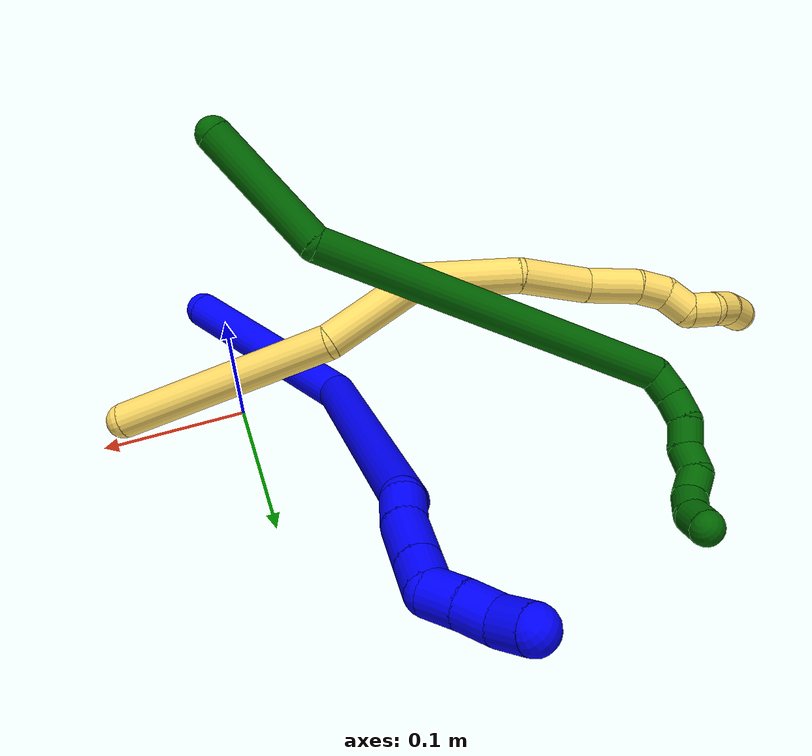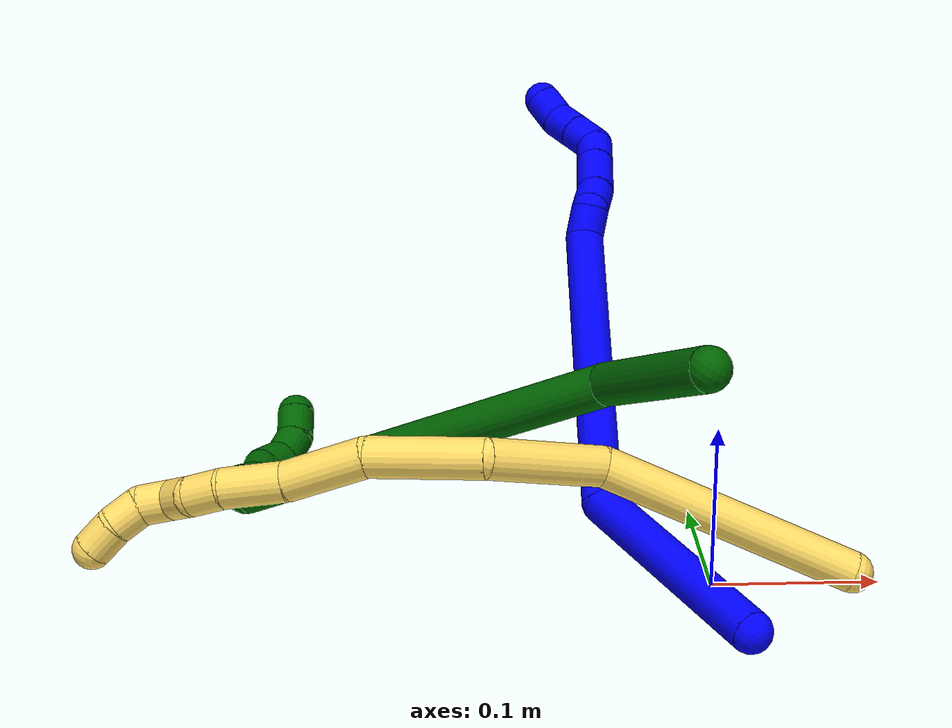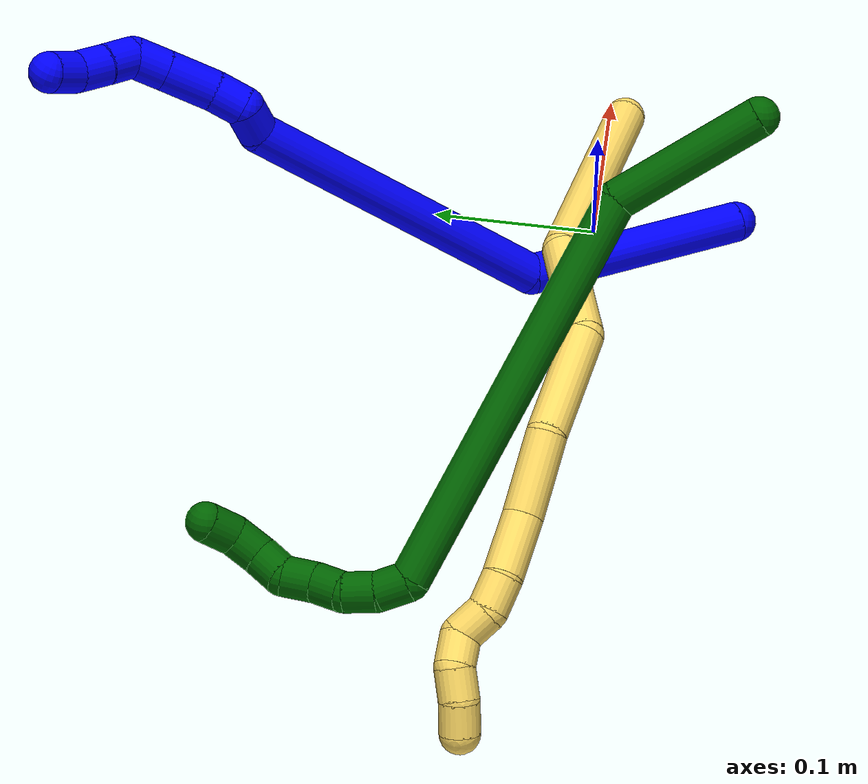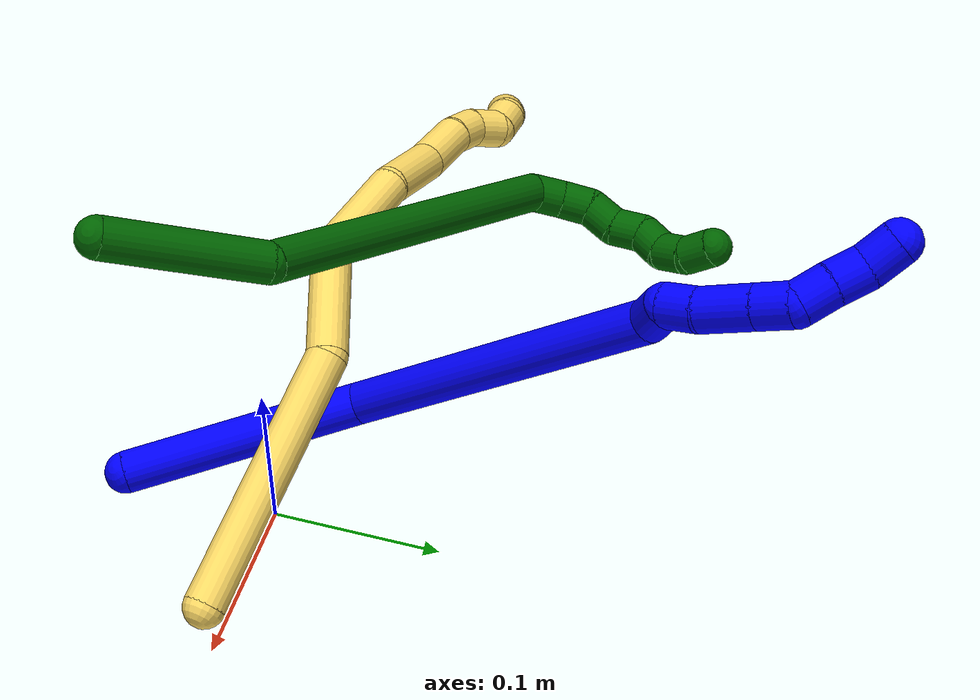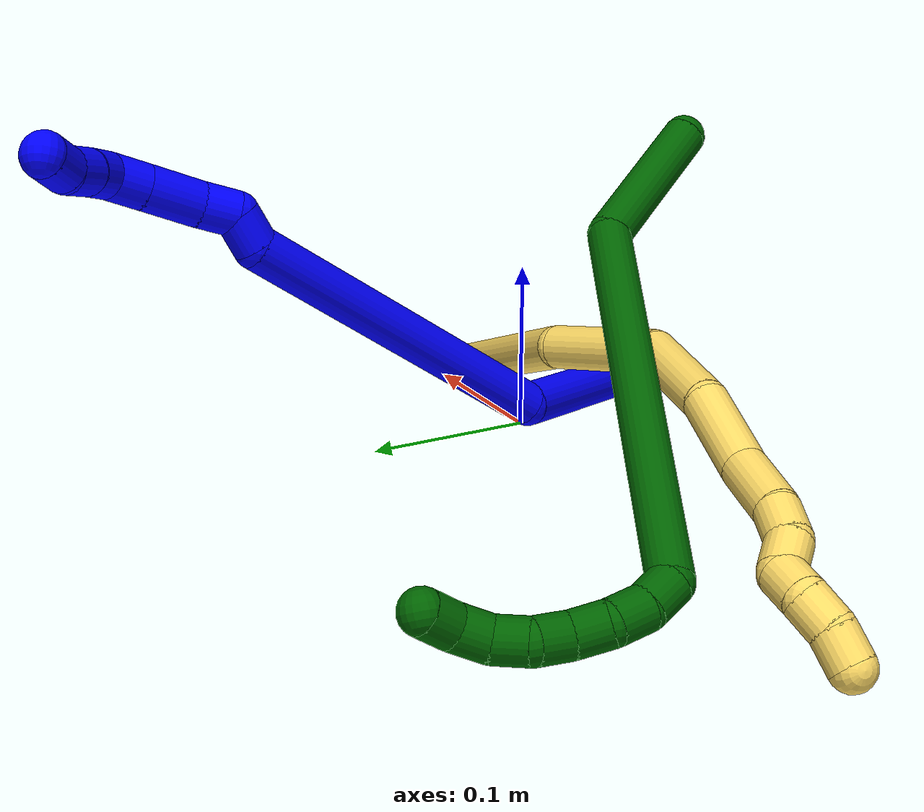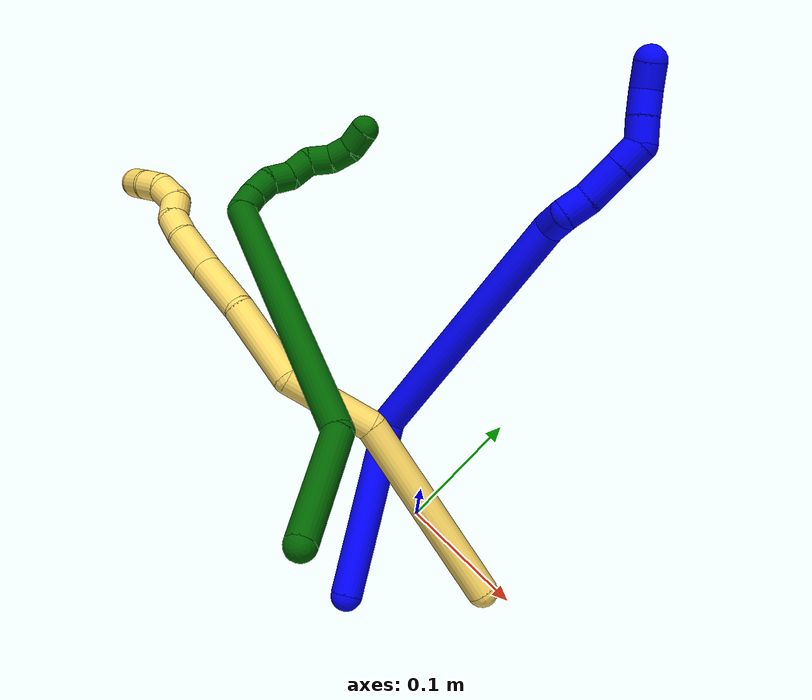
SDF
<sdf version="1.7">
 <world name="default">
  <model name="photoneo_s_sensor">
   <static>1</static>
   <pose>0 0 2 1.57079 1.57079 3.14159</pose>
   <link name="link">
    <inertial><mass>0.1</mass></inertial>
    <sensor name="sensor" type="depth">
     <update_rate>30</update_rate>
     <camera>
      <horizontal_fov>1.22</horizontal_fov>
      <image><width>1920</width><height>1200</height><format>B8G8R8</format></image>
      <clip><near>0.1</near><far>4</far></clip>
      <depth_camera><output>points</output></depth_camera>
     </camera>
     <plugin name="camera_plugin" filename="libgazebo_ros_depth_camera.so">
      <baseline>0.2</baseline>
      <alwaysOn>1</alwaysOn>
      <updateRate>0.0</updateRate>
      <cameraName>camera_ir</cameraName>
      <imageTopicName>/camera/color/image_raw</imageTopicName>
      <cameraInfoTopicName>/camera/color/camera_info</cameraInfoTopicName>
      <depthImageTopicName>/camera/depth/image_raw</depthImageTopicName>
      <depthImageCameraInfoTopicName>/camera/depth/camera_info</depthImageCameraInfoTopicName>
      <pointCloudTopicName>/camera/depth/points</pointCloudTopicName>
      <frameName>fr_optical</frameName>
      <pointCloudCutoff>0.1</pointCloudCutoff>
      <pointCloudCutoffMax>2.0</pointCloudCutoffMax>
      <distortionK1>0</distortionK1>
      <distortionK2>0</distortionK2>
      <distortionK3>0</distortionK3>
      <distortionT1>0</distortionT1>
      <distortionT2>0</distortionT2>
      <CxPrime>0</CxPrime>
      <Cx>0</Cx>
      <Cy>0</Cy>
      <focalLength>0</focalLength>
      <hackBaseline>0</hackBaseline>
     </plugin>
    </sensor>
   </link>
  </model>
  <model name="bin">
   <static>1</static>
   <link name="bottom">
    <collision name="collision-bottom">
     <pose>0 0 -0.01 0 -0 0</pose>
     <geometry><box><size>0.8 0.6 0.02</size></box></geometry>
     <surface>
      <friction><ode><mu>100</mu><mu2>100</mu2></ode></friction>
      <contact><collide_bitmask>65535</collide_bitmask></contact>
     </surface>
    </collision>
   </link>
   <link name="west_wall">
    <collision name="collision-west_wall">
     <pose>-0.41 0 0.1 0 -0 0</pose>
     <geometry><box><size>0.02 0.6 0.2</size></box></geometry>
     <surface>
      <friction><ode><mu>100</mu><mu2>100</mu2></ode></friction>
      <contact><collide_bitmask>65535</collide_bitmask></contact>
     </surface>
    </collision>
   </link>
   <link name="east_wall">
    <collision name="collision-east_wall">
     <pose>0.41 0 0.1 0 -0 0</pose>
     <geometry><box><size>0.02 0.6 0.2</size></box></geometry>
     <surface>
      <friction><ode><mu>100</mu><mu2>100</mu2></ode></friction>
      <contact><collide_bitmask>65535</collide_bitmask></contact>
     </surface>
    </collision>
   </link>
   <link name="south_wall">
    <collision name="collision-south_wall">
     <pose>0 -0.31 0.1 0 -0 0</pose>
     <geometry><box><size>0.8 0.02 0.2</size></box></geometry>
     <surface>
      <friction><ode><mu>100</mu><mu2>100</mu2></ode></friction>
      <contact><collide_bitmask>65535</collide_bitmask></contact>
     </surface>
    </collision>
   </link>
   <link name="north_wall">
    <collision name="collision-north_wall">
     <pose>0 0.31 0.1 0 -0 0</pose>
     <geometry><box><size>0.8 0.02 0.2</size></box></geometry>
     <surface>
      <friction><ode><mu>100</mu><mu2>100</mu2></ode></friction>
      <contact><collide_bitmask>65535</collide_bitmask></contact>
     </surface>
    </collision>
   </link>
  </model>
  <model name="1">
   <static>0</static>
   <link name="1">
    <collision name="collision-cylinder-e_1_1_4">
     <pose>-0.01716 0.062226 -0.028675 -2.00262 -0.245408 0.380577</pose>
     <geometry><cylinder><radius>0.0125</radius><length>0.141263</length></cylinder></geometry>
     <surface>
      <friction><ode><mu>1.16</mu><mu2>1.16</mu2><slip1>0</slip1><slip2>0</slip2></ode></friction>
      <contact><ode><kp>1e+06</kp><kd>1</kd><max_vel>0</max_vel><min_depth>0.001</min_depth></ode></contact>
     </surface>
    </collision>
    <visual name="visual-cylinder-e_1_1_4">
     <pose>-0.01716 0.062226 -0.028675 -2.00262 -0.245408 0.380577</pose>
     <geometry><cylinder><radius>0.0125</radius><length>0.141263</length></cylinder></geometry>
     <material><ambient>0 0 1 1</ambient></material>
    </visual>
    <collision name="collision-cylinder-e_2_4_5">
     <pose>-0.033466 0.224662 -0.037266 -1.37299 0.00836 -0.006851</pose>
     <geometry><cylinder><radius>0.0125</radius><length>0.204415</length></cylinder></geometry>
     <surface>
      <friction><ode><mu>1.16</mu><mu2>1.16</mu2><slip1>0</slip1><slip2>0</slip2></ode></friction>
      <contact><ode><kp>1e+06</kp><kd>1</kd><max_vel>0</max_vel><min_depth>0.001</min_depth></ode></contact>
     </surface>
    </collision>
    <visual name="visual-cylinder-e_2_4_5">
     <pose>-0.033466 0.224662 -0.037266 -1.37299 0.00836 -0.006851</pose>
     <geometry><cylinder><radius>0.0125</radius><length>0.204415</length></cylinder></geometry>
     <material><ambient>0 0 1 1</ambient></material>
    </visual>
    <collision name="collision-cylinder-e_3_5_6">
     <pose>-0.033158 0.332414 -0.01026 -0.828251 -0.053417 0.023484</pose>
     <geometry><cylinder><radius>0.0125</radius><length>0.020499</length></cylinder></geometry>
     <surface>
      <friction><ode><mu>1.16</mu><mu2>1.16</mu2><slip1>0</slip1><slip2>0</slip2></ode></friction>
      <contact><ode><kp>1e+06</kp><kd>1</kd><max_vel>0</max_vel><min_depth>0.001</min_depth></ode></contact>
     </surface>
    </collision>
    <visual name="visual-cylinder-e_3_5_6">
     <pose>-0.033158 0.332414 -0.01026 -0.828251 -0.053417 0.023484</pose>
     <geometry><cylinder><radius>0.0125</radius><length>0.020499</length></cylinder></geometry>
     <material><ambient>0 0 1 1</ambient></material>
    </visual>
    <collision name="collision-cylinder-e_4_6_7">
     <pose>-0.030192 0.349447 -0.002599 -1.49297 0.353534 -0.327528</pose>
     <geometry><cylinder><radius>0.0125</radius><length>0.020297</length></cylinder></geometry>
     <surface>
      <friction><ode><mu>1.16</mu><mu2>1.16</mu2><slip1>0</slip1><slip2>0</slip2></ode></friction>
      <contact><ode><kp>1e+06</kp><kd>1</kd><max_vel>0</max_vel><min_depth>0.001</min_depth></ode></contact>
     </surface>
    </collision>
    <visual name="visual-cylinder-e_4_6_7">
     <pose>-0.030192 0.349447 -0.002599 -1.49297 0.353534 -0.327528</pose>
     <geometry><cylinder><radius>0.0125</radius><length>0.020297</length></cylinder></geometry>
     <material><ambient>0 0 1 1</ambient></material>
    </visual>
    <collision name="collision-cylinder-e_5_7_8">
     <pose>-0.024049 0.37468 -0.001118 -1.52379 0.165334 -0.157771</pose>
     <geometry><cylinder><radius>0.0125</radius><length>0.031954</length></cylinder></geometry>
     <surface>
      <friction><ode><mu>1.16</mu><mu2>1.16</mu2><slip1>0</slip1><slip2>0</slip2></ode></friction>
      <contact><ode><kp>1e+06</kp><kd>1</kd><max_vel>0</max_vel><min_depth>0.001</min_depth></ode></contact>
     </surface>
    </collision>
    <visual name="visual-cylinder-e_5_7_8">
     <pose>-0.024049 0.37468 -0.001118 -1.52379 0.165334 -0.157771</pose>
     <geometry><cylinder><radius>0.0125</radius><length>0.031954</length></cylinder></geometry>
     <material><ambient>0 0 1 1</ambient></material>
    </visual>
    <collision name="collision-cylinder-e_6_8_9">
     <pose>-0.019703 0.400833 4e-05 -1.53071 0.163318 -0.156926</pose>
     <geometry><cylinder><radius>0.0125</radius><length>0.021118</length></cylinder></geometry>
     <surface>
      <friction><ode><mu>1.16</mu><mu2>1.16</mu2><slip1>0</slip1><slip2>0</slip2></ode></friction>
      <contact><ode><kp>1e+06</kp><kd>1</kd><max_vel>0</max_vel><min_depth>0.001</min_depth></ode></contact>
     </surface>
    </collision>
    <visual name="visual-cylinder-e_6_8_9">
     <pose>-0.019703 0.400833 4e-05 -1.53071 0.163318 -0.156926</pose>
     <geometry><cylinder><radius>0.0125</radius><length>0.021118</length></cylinder></geometry>
     <material><ambient>0 0 1 1</ambient></material>
    </visual>
    <collision name="collision-cylinder-e_7_9_10">
     <pose>-0.022511 0.419714 -0.002431 -1.89943 -0.468125 0.6433</pose>
     <geometry><cylinder><radius>0.0125</radius><length>0.020059</length></cylinder></geometry>
     <surface>
      <friction><ode><mu>1.16</mu><mu2>1.16</mu2><slip1>0</slip1><slip2>0</slip2></ode></friction>
      <contact><ode><kp>1e+06</kp><kd>1</kd><max_vel>0</max_vel><min_depth>0.001</min_depth></ode></contact>
     </surface>
    </collision>
    <visual name="visual-cylinder-e_7_9_10">
     <pose>-0.022511 0.419714 -0.002431 -1.89943 -0.468125 0.6433</pose>
     <geometry><cylinder><radius>0.0125</radius><length>0.020059</length></cylinder></geometry>
     <material><ambient>0 0 1 1</ambient></material>
    </visual>
    <collision name="collision-cylinder-e_8_10_11">
     <pose>-0.030943 0.436825 -0.008501 -1.92358 -0.401262 0.567446</pose>
     <geometry><cylinder><radius>0.0125</radius><length>0.020002</length></cylinder></geometry>
     <surface>
      <friction><ode><mu>1.16</mu><mu2>1.16</mu2><slip1>0</slip1><slip2>0</slip2></ode></friction>
      <contact><ode><kp>1e+06</kp><kd>1</kd><max_vel>0</max_vel><min_depth>0.001</min_depth></ode></contact>
     </surface>
    </collision>
    <visual name="visual-cylinder-e_8_10_11">
     <pose>-0.030943 0.436825 -0.008501 -1.92358 -0.401262 0.567446</pose>
     <geometry><cylinder><radius>0.0125</radius><length>0.020002</length></cylinder></geometry>
     <material><ambient>0 0 1 1</ambient></material>
    </visual>
    <collision name="collision-cylinder-e_9_11_2">
     <pose>-0.039642 0.454463 -0.011839 -1.58817 -0.489348 0.49758</pose>
     <geometry><cylinder><radius>0.0125</radius><length>0.020393</length></cylinder></geometry>
     <surface>
      <friction><ode><mu>1.16</mu><mu2>1.16</mu2><slip1>0</slip1><slip2>0</slip2></ode></friction>
      <contact><ode><kp>1e+06</kp><kd>1</kd><max_vel>0</max_vel><min_depth>0.001</min_depth></ode></contact>
     </surface>
    </collision>
    <visual name="visual-cylinder-e_9_11_2">
     <pose>-0.039642 0.454463 -0.011839 -1.58817 -0.489348 0.49758</pose>
     <geometry><cylinder><radius>0.0125</radius><length>0.020393</length></cylinder></geometry>
     <material><ambient>0 0 1 1</ambient></material>
    </visual>
    <collision name="collision-sphere-2">
     <pose>-0.044435 0.463462 -0.011995 0 -0 0</pose>
     <geometry><sphere><radius>0.0125</radius></sphere></geometry>
     <surface>
      <friction><ode><mu>1.16</mu><mu2>1.16</mu2><slip1>0</slip1><slip2>0</slip2></ode></friction>
      <contact><ode><kp>1e+06</kp><kd>1</kd><max_vel>0</max_vel><min_depth>0.001</min_depth></ode></contact>
     </surface>
    </collision>
    <visual name="visual-sphere-2">
     <pose>-0.044435 0.463462 -0.011995 0 -0 0</pose>
     <geometry><sphere><radius>0.0125</radius></sphere></geometry>
     <material><ambient>0 0 1 1</ambient></material>
    </visual>
    <collision name="collision-sphere-11">
     <pose>-0.034849 0.445465 -0.011682 0 -0 0</pose>
     <geometry><sphere><radius>0.0125</radius></sphere></geometry>
     <surface>
      <friction><ode><mu>1.16</mu><mu2>1.16</mu2><slip1>0</slip1><slip2>0</slip2></ode></friction>
      <contact><ode><kp>1e+06</kp><kd>1</kd><max_vel>0</max_vel><min_depth>0.001</min_depth></ode></contact>
     </surface>
    </collision>
    <visual name="visual-sphere-11">
     <pose>-0.034849 0.445465 -0.011682 0 -0 0</pose>
     <geometry><sphere><radius>0.0125</radius></sphere></geometry>
     <material><ambient>0 0 1 1</ambient></material>
    </visual>
    <collision name="collision-sphere-10">
     <pose>-0.027037 0.428186 -0.00532 0 -0 0</pose>
     <geometry><sphere><radius>0.0125</radius></sphere></geometry>
     <surface>
      <friction><ode><mu>1.16</mu><mu2>1.16</mu2><slip1>0</slip1><slip2>0</slip2></ode></friction>
      <contact><ode><kp>1e+06</kp><kd>1</kd><max_vel>0</max_vel><min_depth>0.001</min_depth></ode></contact>
     </surface>
    </collision>
    <visual name="visual-sphere-10">
     <pose>-0.027037 0.428186 -0.00532 0 -0 0</pose>
     <geometry><sphere><radius>0.0125</radius></sphere></geometry>
     <material><ambient>0 0 1 1</ambient></material>
    </visual>
    <collision name="collision-sphere-9">
     <pose>-0.017986 0.411243 0.000457 0 -0 0</pose>
     <geometry><sphere><radius>0.0125</radius></sphere></geometry>
     <surface>
      <friction><ode><mu>1.16</mu><mu2>1.16</mu2><slip1>0</slip1><slip2>0</slip2></ode></friction>
      <contact><ode><kp>1e+06</kp><kd>1</kd><max_vel>0</max_vel><min_depth>0.001</min_depth></ode></contact>
     </surface>
    </collision>
    <visual name="visual-sphere-9">
     <pose>-0.017986 0.411243 0.000457 0 -0 0</pose>
     <geometry><sphere><radius>0.0125</radius></sphere></geometry>
     <material><ambient>0 0 1 1</ambient></material>
    </visual>
    <collision name="collision-sphere-4">
     <pose>-0.03432 0.124452 -0.057351 0 -0 0</pose>
     <geometry><sphere><radius>0.0125</radius></sphere></geometry>
     <surface>
      <friction><ode><mu>1.16</mu><mu2>1.16</mu2><slip1>0</slip1><slip2>0</slip2></ode></friction>
      <contact><ode><kp>1e+06</kp><kd>1</kd><max_vel>0</max_vel><min_depth>0.001</min_depth></ode></contact>
     </surface>
    </collision>
    <visual name="visual-sphere-4">
     <pose>-0.03432 0.124452 -0.057351 0 -0 0</pose>
     <geometry><sphere><radius>0.0125</radius></sphere></geometry>
     <material><ambient>0 0 1 1</ambient></material>
    </visual>
    <collision name="collision-sphere-1">
     <geometry><sphere><radius>0.0125</radius></sphere></geometry>
     <surface>
      <friction><ode><mu>1.16</mu><mu2>1.16</mu2><slip1>0</slip1><slip2>0</slip2></ode></friction>
      <contact><ode><kp>1e+06</kp><kd>1</kd><max_vel>0</max_vel><min_depth>0.001</min_depth></ode></contact>
     </surface>
    </collision>
    <visual name="visual-sphere-1">
     <geometry><sphere><radius>0.0125</radius></sphere></geometry>
     <material><ambient>0 0 1 1</ambient></material>
    </visual>
    <collision name="collision-sphere-8">
     <pose>-0.021419 0.390422 -0.000378 0 -0 0</pose>
     <geometry><sphere><radius>0.0125</radius></sphere></geometry>
     <surface>
      <friction><ode><mu>1.16</mu><mu2>1.16</mu2><slip1>0</slip1><slip2>0</slip2></ode></friction>
      <contact><ode><kp>1e+06</kp><kd>1</kd><max_vel>0</max_vel><min_depth>0.001</min_depth></ode></contact>
     </surface>
    </collision>
    <visual name="visual-sphere-8">
     <pose>-0.021419 0.390422 -0.000378 0 -0 0</pose>
     <geometry><sphere><radius>0.0125</radius></sphere></geometry>
     <material><ambient>0 0 1 1</ambient></material>
    </visual>
    <collision name="collision-sphere-5">
     <pose>-0.032611 0.324873 -0.01718 0 -0 0</pose>
     <geometry><sphere><radius>0.0125</radius></sphere></geometry>
     <surface>
      <friction><ode><mu>1.16</mu><mu2>1.16</mu2><slip1>0</slip1><slip2>0</slip2></ode></friction>
      <contact><ode><kp>1e+06</kp><kd>1</kd><max_vel>0</max_vel><min_depth>0.001</min_depth></ode></contact>
     </surface>
    </collision>
    <visual name="visual-sphere-5">
     <pose>-0.032611 0.324873 -0.01718 0 -0 0</pose>
     <geometry><sphere><radius>0.0125</radius></sphere></geometry>
     <material><ambient>0 0 1 1</ambient></material>
    </visual>
    <collision name="collision-sphere-6">
     <pose>-0.033706 0.339955 -0.003339 0 -0 0</pose>
     <geometry><sphere><radius>0.0125</radius></sphere></geometry>
     <surface>
      <friction><ode><mu>1.16</mu><mu2>1.16</mu2><slip1>0</slip1><slip2>0</slip2></ode></friction>
      <contact><ode><kp>1e+06</kp><kd>1</kd><max_vel>0</max_vel><min_depth>0.001</min_depth></ode></contact>
     </surface>
    </collision>
    <visual name="visual-sphere-6">
     <pose>-0.033706 0.339955 -0.003339 0 -0 0</pose>
     <geometry><sphere><radius>0.0125</radius></sphere></geometry>
     <material><ambient>0 0 1 1</ambient></material>
    </visual>
    <collision name="collision-sphere-7">
     <pose>-0.026679 0.358939 -0.001859 0 -0 0</pose>
     <geometry><sphere><radius>0.0125</radius></sphere></geometry>
     <surface>
      <friction><ode><mu>1.16</mu><mu2>1.16</mu2><slip1>0</slip1><slip2>0</slip2></ode></friction>
      <contact><ode><kp>1e+06</kp><kd>1</kd><max_vel>0</max_vel><min_depth>0.001</min_depth></ode></contact>
     </surface>
    </collision>
    <visual name="visual-sphere-7">
     <pose>-0.026679 0.358939 -0.001859 0 -0 0</pose>
     <geometry><sphere><radius>0.0125</radius></sphere></geometry>
     <material><ambient>0 0 1 1</ambient></material>
    </visual>
    <inertial>
     <pose>-0.027242 0.230966 -0.024853 0 -0 0</pose>
     <mass>0.5</mass>
     <inertia>
      <ixx>0.001027</ixx>
      <ixy>0</ixy>
      <ixz>0</ixz>
      <iyy>0.000188</iyy>
      <iyz>0</iyz>
      <izz>-0.000877</izz>
     </inertia>
    </inertial>
   </link>
   <pose>0.00779 -0.088176 0.017669 0.491979 0.424287 0.330554</pose>
  </model>
  <model name="5">
   <static>0</static>
   <link name="5">
    <collision name="collision-cylinder-e_1_1_4">
     <pose>0.002558 -0.000938 0.079794 0.011758 0.03204 0.000188</pose>
     <geometry><cylinder><radius>0.0125</radius><length>0.159681</length></cylinder></geometry>
     <surface>
      <friction><ode><mu>1.16</mu><mu2>1.16</mu2><slip1>0</slip1><slip2>0</slip2></ode></friction>
      <contact><ode><kp>1e+06</kp><kd>1</kd><max_vel>0</max_vel><min_depth>0.001</min_depth></ode></contact>
     </surface>
    </collision>
    <visual name="visual-cylinder-e_1_1_4">
     <pose>0.002558 -0.000938 0.079794 0.011758 0.03204 0.000188</pose>
     <geometry><cylinder><radius>0.0125</radius><length>0.159681</length></cylinder></geometry>
     <material><ambient>1 0.858824 0.4 1</ambient></material>
    </visual>
    <collision name="collision-cylinder-e_2_4_5">
     <pose>-0.007383 -0.011822 0.193087 0.288595 -0.343483 -0.050397</pose>
     <geometry><cylinder><radius>0.0125</radius><length>0.074224</length></cylinder></geometry>
     <surface>
      <friction><ode><mu>1.16</mu><mu2>1.16</mu2><slip1>0</slip1><slip2>0</slip2></ode></friction>
      <contact><ode><kp>1e+06</kp><kd>1</kd><max_vel>0</max_vel><min_depth>0.001</min_depth></ode></contact>
     </surface>
    </collision>
    <visual name="visual-cylinder-e_2_4_5">
     <pose>-0.007383 -0.011822 0.193087 0.288595 -0.343483 -0.050397</pose>
     <geometry><cylinder><radius>0.0125</radius><length>0.074224</length></cylinder></geometry>
     <material><ambient>1 0.858824 0.4 1</ambient></material>
    </visual>
    <collision name="collision-cylinder-e_3_5_6">
     <pose>-0.030161 -0.0122 0.259176 -0.28553 -0.293901 0.042547</pose>
     <geometry><cylinder><radius>0.0125</radius><length>0.070972</length></cylinder></geometry>
     <surface>
      <friction><ode><mu>1.16</mu><mu2>1.16</mu2><slip1>0</slip1><slip2>0</slip2></ode></friction>
      <contact><ode><kp>1e+06</kp><kd>1</kd><max_vel>0</max_vel><min_depth>0.001</min_depth></ode></contact>
     </surface>
    </collision>
    <visual name="visual-cylinder-e_3_5_6">
     <pose>-0.030161 -0.0122 0.259176 -0.28553 -0.293901 0.042547</pose>
     <geometry><cylinder><radius>0.0125</radius><length>0.070972</length></cylinder></geometry>
     <material><ambient>1 0.858824 0.4 1</ambient></material>
    </visual>
    <collision name="collision-cylinder-e_4_6_7">
     <pose>-0.053867 0.007896 0.311359 -0.49313 -0.543065 0.139915</pose>
     <geometry><cylinder><radius>0.0125</radius><length>0.051964</length></cylinder></geometry>
     <surface>
      <friction><ode><mu>1.16</mu><mu2>1.16</mu2><slip1>0</slip1><slip2>0</slip2></ode></friction>
      <contact><ode><kp>1e+06</kp><kd>1</kd><max_vel>0</max_vel><min_depth>0.001</min_depth></ode></contact>
     </surface>
    </collision>
    <visual name="visual-cylinder-e_4_6_7">
     <pose>-0.053867 0.007896 0.311359 -0.49313 -0.543065 0.139915</pose>
     <geometry><cylinder><radius>0.0125</radius><length>0.051964</length></cylinder></geometry>
     <material><ambient>1 0.858824 0.4 1</ambient></material>
    </visual>
    <collision name="collision-cylinder-e_5_7_8">
     <pose>-0.074947 0.024906 0.347955 -0.364129 -0.398164 0.074253</pose>
     <geometry><cylinder><radius>0.0125</radius><length>0.039479</length></cylinder></geometry>
     <surface>
      <friction><ode><mu>1.16</mu><mu2>1.16</mu2><slip1>0</slip1><slip2>0</slip2></ode></friction>
      <contact><ode><kp>1e+06</kp><kd>1</kd><max_vel>0</max_vel><min_depth>0.001</min_depth></ode></contact>
     </surface>
    </collision>
    <visual name="visual-cylinder-e_5_7_8">
     <pose>-0.074947 0.024906 0.347955 -0.364129 -0.398164 0.074253</pose>
     <geometry><cylinder><radius>0.0125</radius><length>0.039479</length></cylinder></geometry>
     <material><ambient>1 0.858824 0.4 1</ambient></material>
    </visual>
    <collision name="collision-cylinder-e_6_8_9">
     <pose>-0.087337 0.037014 0.373332 -0.591685 -0.438859 0.135739</pose>
     <geometry><cylinder><radius>0.0125</radius><length>0.022295</length></cylinder></geometry>
     <surface>
      <friction><ode><mu>1.16</mu><mu2>1.16</mu2><slip1>0</slip1><slip2>0</slip2></ode></friction>
      <contact><ode><kp>1e+06</kp><kd>1</kd><max_vel>0</max_vel><min_depth>0.001</min_depth></ode></contact>
     </surface>
    </collision>
    <visual name="visual-cylinder-e_6_8_9">
     <pose>-0.087337 0.037014 0.373332 -0.591685 -0.438859 0.135739</pose>
     <geometry><cylinder><radius>0.0125</radius><length>0.022295</length></cylinder></geometry>
     <material><ambient>1 0.858824 0.4 1</ambient></material>
    </visual>
    <collision name="collision-cylinder-e_7_9_10">
     <pose>-0.093835 0.051332 0.387383 -0.992283 -0.168116 0.091154</pose>
     <geometry><cylinder><radius>0.0125</radius><length>0.021054</length></cylinder></geometry>
     <surface>
      <friction><ode><mu>1.16</mu><mu2>1.16</mu2><slip1>0</slip1><slip2>0</slip2></ode></friction>
      <contact><ode><kp>1e+06</kp><kd>1</kd><max_vel>0</max_vel><min_depth>0.001</min_depth></ode></contact>
     </surface>
    </collision>
    <visual name="visual-cylinder-e_7_9_10">
     <pose>-0.093835 0.051332 0.387383 -0.992283 -0.168116 0.091154</pose>
     <geometry><cylinder><radius>0.0125</radius><length>0.021054</length></cylinder></geometry>
     <material><ambient>1 0.858824 0.4 1</ambient></material>
    </visual>
    <collision name="collision-cylinder-e_8_10_11">
     <pose>-0.100429 0.062449 0.40159 -0.277093 -0.498808 0.071003</pose>
     <geometry><cylinder><radius>0.0125</radius><length>0.020204</length></cylinder></geometry>
     <surface>
      <friction><ode><mu>1.16</mu><mu2>1.16</mu2><slip1>0</slip1><slip2>0</slip2></ode></friction>
      <contact><ode><kp>1e+06</kp><kd>1</kd><max_vel>0</max_vel><min_depth>0.001</min_depth></ode></contact>
     </surface>
    </collision>
    <visual name="visual-cylinder-e_8_10_11">
     <pose>-0.100429 0.062449 0.40159 -0.277093 -0.498808 0.071003</pose>
     <geometry><cylinder><radius>0.0125</radius><length>0.020204</length></cylinder></geometry>
     <material><ambient>1 0.858824 0.4 1</ambient></material>
    </visual>
    <collision name="collision-cylinder-e_9_11_12">
     <pose>-0.113588 0.066529 0.415415 -0.302907 -0.983311 0.163101</pose>
     <geometry><cylinder><radius>0.0125</radius><length>0.020006</length></cylinder></geometry>
     <surface>
      <friction><ode><mu>1.16</mu><mu2>1.16</mu2><slip1>0</slip1><slip2>0</slip2></ode></friction>
      <contact><ode><kp>1e+06</kp><kd>1</kd><max_vel>0</max_vel><min_depth>0.001</min_depth></ode></contact>
     </surface>
    </collision>
    <visual name="visual-cylinder-e_9_11_12">
     <pose>-0.113588 0.066529 0.415415 -0.302907 -0.983311 0.163101</pose>
     <geometry><cylinder><radius>0.0125</radius><length>0.020006</length></cylinder></geometry>
     <material><ambient>1 0.858824 0.4 1</ambient></material>
    </visual>
    <collision name="collision-cylinder-e_10_12_2">
     <pose>-0.130481 0.071844 0.424503 -0.767282 -1.01902 0.443619</pose>
     <geometry><cylinder><radius>0.0125</radius><length>0.020122</length></cylinder></geometry>
     <surface>
      <friction><ode><mu>1.16</mu><mu2>1.16</mu2><slip1>0</slip1><slip2>0</slip2></ode></friction>
      <contact><ode><kp>1e+06</kp><kd>1</kd><max_vel>0</max_vel><min_depth>0.001</min_depth></ode></contact>
     </surface>
    </collision>
    <visual name="visual-cylinder-e_10_12_2">
     <pose>-0.130481 0.071844 0.424503 -0.767282 -1.01902 0.443619</pose>
     <geometry><cylinder><radius>0.0125</radius><length>0.020122</length></cylinder></geometry>
     <material><ambient>1 0.858824 0.4 1</ambient></material>
    </visual>
    <collision name="collision-sphere-2">
     <pose>-0.139049 0.075505 0.428299 0 -0 0</pose>
     <geometry><sphere><radius>0.0125</radius></sphere></geometry>
     <surface>
      <friction><ode><mu>1.16</mu><mu2>1.16</mu2><slip1>0</slip1><slip2>0</slip2></ode></friction>
      <contact><ode><kp>1e+06</kp><kd>1</kd><max_vel>0</max_vel><min_depth>0.001</min_depth></ode></contact>
     </surface>
    </collision>
    <visual name="visual-sphere-2">
     <pose>-0.139049 0.075505 0.428299 0 -0 0</pose>
     <geometry><sphere><radius>0.0125</radius></sphere></geometry>
     <material><ambient>1 0.858824 0.4 1</ambient></material>
    </visual>
    <collision name="collision-sphere-12">
     <pose>-0.121913 0.068183 0.420706 0 -0 0</pose>
     <geometry><sphere><radius>0.0125</radius></sphere></geometry>
     <surface>
      <friction><ode><mu>1.16</mu><mu2>1.16</mu2><slip1>0</slip1><slip2>0</slip2></ode></friction>
      <contact><ode><kp>1e+06</kp><kd>1</kd><max_vel>0</max_vel><min_depth>0.001</min_depth></ode></contact>
     </surface>
    </collision>
    <visual name="visual-sphere-12">
     <pose>-0.121913 0.068183 0.420706 0 -0 0</pose>
     <geometry><sphere><radius>0.0125</radius></sphere></geometry>
     <material><ambient>1 0.858824 0.4 1</ambient></material>
    </visual>
    <collision name="collision-sphere-11">
     <pose>-0.105262 0.064876 0.410123 0 -0 0</pose>
     <geometry><sphere><radius>0.0125</radius></sphere></geometry>
     <surface>
      <friction><ode><mu>1.16</mu><mu2>1.16</mu2><slip1>0</slip1><slip2>0</slip2></ode></friction>
      <contact><ode><kp>1e+06</kp><kd>1</kd><max_vel>0</max_vel><min_depth>0.001</min_depth></ode></contact>
     </surface>
    </collision>
    <visual name="visual-sphere-11">
     <pose>-0.105262 0.064876 0.410123 0 -0 0</pose>
     <geometry><sphere><radius>0.0125</radius></sphere></geometry>
     <material><ambient>1 0.858824 0.4 1</ambient></material>
    </visual>
    <collision name="collision-sphere-10">
     <pose>-0.095597 0.060022 0.393057 0 -0 0</pose>
     <geometry><sphere><radius>0.0125</radius></sphere></geometry>
     <surface>
      <friction><ode><mu>1.16</mu><mu2>1.16</mu2><slip1>0</slip1><slip2>0</slip2></ode></friction>
      <contact><ode><kp>1e+06</kp><kd>1</kd><max_vel>0</max_vel><min_depth>0.001</min_depth></ode></contact>
     </surface>
    </collision>
    <visual name="visual-sphere-10">
     <pose>-0.095597 0.060022 0.393057 0 -0 0</pose>
     <geometry><sphere><radius>0.0125</radius></sphere></geometry>
     <material><ambient>1 0.858824 0.4 1</ambient></material>
    </visual>
    <collision name="collision-sphere-9">
     <pose>-0.092074 0.042643 0.381708 0 -0 0</pose>
     <geometry><sphere><radius>0.0125</radius></sphere></geometry>
     <surface>
      <friction><ode><mu>1.16</mu><mu2>1.16</mu2><slip1>0</slip1><slip2>0</slip2></ode></friction>
      <contact><ode><kp>1e+06</kp><kd>1</kd><max_vel>0</max_vel><min_depth>0.001</min_depth></ode></contact>
     </surface>
    </collision>
    <visual name="visual-sphere-9">
     <pose>-0.092074 0.042643 0.381708 0 -0 0</pose>
     <geometry><sphere><radius>0.0125</radius></sphere></geometry>
     <material><ambient>1 0.858824 0.4 1</ambient></material>
    </visual>
    <collision name="collision-sphere-4">
     <pose>0.005115 -0.001877 0.159588 0 -0 0</pose>
     <geometry><sphere><radius>0.0125</radius></sphere></geometry>
     <surface>
      <friction><ode><mu>1.16</mu><mu2>1.16</mu2><slip1>0</slip1><slip2>0</slip2></ode></friction>
      <contact><ode><kp>1e+06</kp><kd>1</kd><max_vel>0</max_vel><min_depth>0.001</min_depth></ode></contact>
     </surface>
    </collision>
    <visual name="visual-sphere-4">
     <pose>0.005115 -0.001877 0.159588 0 -0 0</pose>
     <geometry><sphere><radius>0.0125</radius></sphere></geometry>
     <material><ambient>1 0.858824 0.4 1</ambient></material>
    </visual>
    <collision name="collision-sphere-1">
     <geometry><sphere><radius>0.0125</radius></sphere></geometry>
     <surface>
      <friction><ode><mu>1.16</mu><mu2>1.16</mu2><slip1>0</slip1><slip2>0</slip2></ode></friction>
      <contact><ode><kp>1e+06</kp><kd>1</kd><max_vel>0</max_vel><min_depth>0.001</min_depth></ode></contact>
     </surface>
    </collision>
    <visual name="visual-sphere-1">
     <geometry><sphere><radius>0.0125</radius></sphere></geometry>
     <material><ambient>1 0.858824 0.4 1</ambient></material>
    </visual>
    <collision name="collision-sphere-8">
     <pose>-0.082601 0.031386 0.364957 0 -0 0</pose>
     <geometry><sphere><radius>0.0125</radius></sphere></geometry>
     <surface>
      <friction><ode><mu>1.16</mu><mu2>1.16</mu2><slip1>0</slip1><slip2>0</slip2></ode></friction>
      <contact><ode><kp>1e+06</kp><kd>1</kd><max_vel>0</max_vel><min_depth>0.001</min_depth></ode></contact>
     </surface>
    </collision>
    <visual name="visual-sphere-8">
     <pose>-0.082601 0.031386 0.364957 0 -0 0</pose>
     <geometry><sphere><radius>0.0125</radius></sphere></geometry>
     <material><ambient>1 0.858824 0.4 1</ambient></material>
    </visual>
    <collision name="collision-sphere-5">
     <pose>-0.019881 -0.021767 0.226586 0 -0 0</pose>
     <geometry><sphere><radius>0.0125</radius></sphere></geometry>
     <surface>
      <friction><ode><mu>1.16</mu><mu2>1.16</mu2><slip1>0</slip1><slip2>0</slip2></ode></friction>
      <contact><ode><kp>1e+06</kp><kd>1</kd><max_vel>0</max_vel><min_depth>0.001</min_depth></ode></contact>
     </surface>
    </collision>
    <visual name="visual-sphere-5">
     <pose>-0.019881 -0.021767 0.226586 0 -0 0</pose>
     <geometry><sphere><radius>0.0125</radius></sphere></geometry>
     <material><ambient>1 0.858824 0.4 1</ambient></material>
    </visual>
    <collision name="collision-sphere-6">
     <pose>-0.040441 -0.002634 0.291765 0 -0 0</pose>
     <geometry><sphere><radius>0.0125</radius></sphere></geometry>
     <surface>
      <friction><ode><mu>1.16</mu><mu2>1.16</mu2><slip1>0</slip1><slip2>0</slip2></ode></friction>
      <contact><ode><kp>1e+06</kp><kd>1</kd><max_vel>0</max_vel><min_depth>0.001</min_depth></ode></contact>
     </surface>
    </collision>
    <visual name="visual-sphere-6">
     <pose>-0.040441 -0.002634 0.291765 0 -0 0</pose>
     <geometry><sphere><radius>0.0125</radius></sphere></geometry>
     <material><ambient>1 0.858824 0.4 1</ambient></material>
    </visual>
    <collision name="collision-sphere-7">
     <pose>-0.067294 0.018426 0.330952 0 -0 0</pose>
     <geometry><sphere><radius>0.0125</radius></sphere></geometry>
     <surface>
      <friction><ode><mu>1.16</mu><mu2>1.16</mu2><slip1>0</slip1><slip2>0</slip2></ode></friction>
      <contact><ode><kp>1e+06</kp><kd>1</kd><max_vel>0</max_vel><min_depth>0.001</min_depth></ode></contact>
     </surface>
    </collision>
    <visual name="visual-sphere-7">
     <pose>-0.067294 0.018426 0.330952 0 -0 0</pose>
     <geometry><sphere><radius>0.0125</radius></sphere></geometry>
     <material><ambient>1 0.858824 0.4 1</ambient></material>
    </visual>
    <inertial>
     <pose>-0.037776 0.010889 0.233658 0 -0 0</pose>
     <mass>0.5</mass>
     <inertia>
      <ixx>0.000427</ixx>
      <ixy>0</ixy>
      <ixz>0</ixz>
      <iyy>0.000446</iyy>
      <iyz>0</iyz>
      <izz>5.2e-05</izz>
     </inertia>
    </inertial>
   </link>
   <pose>0.08158 -0.010389 0.012488 -1.02467 -0.853764 0.990078</pose>
  </model>
  <model name="6">
   <static>0</static>
   <link name="6">
    <collision name="collision-cylinder-e_1_1_4">
     <pose>-0.039376 0.002032 0.03003 -0.067565 -0.918144 0.033406</pose>
     <geometry><cylinder><radius>0.0125</radius><length>0.099125</length></cylinder></geometry>
     <surface>
      <friction><ode><mu>1.16</mu><mu2>1.16</mu2><slip1>0</slip1><slip2>0</slip2></ode></friction>
      <contact><ode><kp>1e+06</kp><kd>1</kd><max_vel>0</max_vel><min_depth>0.001</min_depth></ode></contact>
     </surface>
    </collision>
    <visual name="visual-cylinder-e_1_1_4">
     <pose>-0.039376 0.002032 0.03003 -0.067565 -0.918144 0.033406</pose>
     <geometry><cylinder><radius>0.0125</radius><length>0.099125</length></cylinder></geometry>
     <material><ambient>0 0.392157 0.003922 1</ambient></material>
    </visual>
    <collision name="collision-cylinder-e_2_4_5">
     <pose>-0.133421 0.061079 0.162668 -0.50718 -0.435853 0.114657</pose>
     <geometry><cylinder><radius>0.0125</radius><length>0.25898</length></cylinder></geometry>
     <surface>
      <friction><ode><mu>1.16</mu><mu2>1.16</mu2><slip1>0</slip1><slip2>0</slip2></ode></friction>
      <contact><ode><kp>1e+06</kp><kd>1</kd><max_vel>0</max_vel><min_depth>0.001</min_depth></ode></contact>
     </surface>
    </collision>
    <visual name="visual-cylinder-e_2_4_5">
     <pose>-0.133421 0.061079 0.162668 -0.50718 -0.435853 0.114657</pose>
     <geometry><cylinder><radius>0.0125</radius><length>0.25898</length></cylinder></geometry>
     <material><ambient>0 0.392157 0.003922 1</ambient></material>
    </visual>
    <collision name="collision-cylinder-e_3_5_6">
     <pose>-0.197082 0.117256 0.270189 0.169109 -1.06465 -0.099768</pose>
     <geometry><cylinder><radius>0.0125</radius><length>0.020562</length></cylinder></geometry>
     <surface>
      <friction><ode><mu>1.16</mu><mu2>1.16</mu2><slip1>0</slip1><slip2>0</slip2></ode></friction>
      <contact><ode><kp>1e+06</kp><kd>1</kd><max_vel>0</max_vel><min_depth>0.001</min_depth></ode></contact>
     </surface>
    </collision>
    <visual name="visual-cylinder-e_3_5_6">
     <pose>-0.197082 0.117256 0.270189 0.169109 -1.06465 -0.099768</pose>
     <geometry><cylinder><radius>0.0125</radius><length>0.020562</length></cylinder></geometry>
     <material><ambient>0 0.392157 0.003922 1</ambient></material>
    </visual>
    <collision name="collision-cylinder-e_4_6_7">
     <pose>-0.215701 0.114178 0.277355 0.782485 -1.25218 -0.579798</pose>
     <geometry><cylinder><radius>0.0125</radius><length>0.020276</length></cylinder></geometry>
     <surface>
      <friction><ode><mu>1.16</mu><mu2>1.16</mu2><slip1>0</slip1><slip2>0</slip2></ode></friction>
      <contact><ode><kp>1e+06</kp><kd>1</kd><max_vel>0</max_vel><min_depth>0.001</min_depth></ode></contact>
     </surface>
    </collision>
    <visual name="visual-cylinder-e_4_6_7">
     <pose>-0.215701 0.114178 0.277355 0.782485 -1.25218 -0.579798</pose>
     <geometry><cylinder><radius>0.0125</radius><length>0.020276</length></cylinder></geometry>
     <material><ambient>0 0.392157 0.003922 1</ambient></material>
    </visual>
    <collision name="collision-cylinder-e_5_7_8">
     <pose>-0.233202 0.105423 0.280662 1.4102 -0.873048 -0.755916</pose>
     <geometry><cylinder><radius>0.0125</radius><length>0.020548</length></cylinder></geometry>
     <surface>
      <friction><ode><mu>1.16</mu><mu2>1.16</mu2><slip1>0</slip1><slip2>0</slip2></ode></friction>
      <contact><ode><kp>1e+06</kp><kd>1</kd><max_vel>0</max_vel><min_depth>0.001</min_depth></ode></contact>
     </surface>
    </collision>
    <visual name="visual-cylinder-e_5_7_8">
     <pose>-0.233202 0.105423 0.280662 1.4102 -0.873048 -0.755916</pose>
     <geometry><cylinder><radius>0.0125</radius><length>0.020548</length></cylinder></geometry>
     <material><ambient>0 0.392157 0.003922 1</ambient></material>
    </visual>
    <collision name="collision-cylinder-e_6_8_9">
     <pose>-0.250906 0.096316 0.281611 1.61179 -1.31294 -1.35279</pose>
     <geometry><cylinder><radius>0.0125</radius><length>0.020335</length></cylinder></geometry>
     <surface>
      <friction><ode><mu>1.16</mu><mu2>1.16</mu2><slip1>0</slip1><slip2>0</slip2></ode></friction>
      <contact><ode><kp>1e+06</kp><kd>1</kd><max_vel>0</max_vel><min_depth>0.001</min_depth></ode></contact>
     </surface>
    </collision>
    <visual name="visual-cylinder-e_6_8_9">
     <pose>-0.250906 0.096316 0.281611 1.61179 -1.31294 -1.35279</pose>
     <geometry><cylinder><radius>0.0125</radius><length>0.020335</length></cylinder></geometry>
     <material><ambient>0 0.392157 0.003922 1</ambient></material>
    </visual>
    <collision name="collision-cylinder-e_7_9_10">
     <pose>-0.267467 0.086709 0.279128 1.8975 -0.737449 -0.988572</pose>
     <geometry><cylinder><radius>0.0125</radius><length>0.020018</length></cylinder></geometry>
     <surface>
      <friction><ode><mu>1.16</mu><mu2>1.16</mu2><slip1>0</slip1><slip2>0</slip2></ode></friction>
      <contact><ode><kp>1e+06</kp><kd>1</kd><max_vel>0</max_vel><min_depth>0.001</min_depth></ode></contact>
     </surface>
    </collision>
    <visual name="visual-cylinder-e_7_9_10">
     <pose>-0.267467 0.086709 0.279128 1.8975 -0.737449 -0.988572</pose>
     <geometry><cylinder><radius>0.0125</radius><length>0.020018</length></cylinder></geometry>
     <material><ambient>0 0.392157 0.003922 1</ambient></material>
    </visual>
    <collision name="collision-cylinder-e_8_10_11">
     <pose>-0.282478 0.076592 0.272053 2.55826 -0.973886 -2.10993</pose>
     <geometry><cylinder><radius>0.0125</radius><length>0.020024</length></cylinder></geometry>
     <surface>
      <friction><ode><mu>1.16</mu><mu2>1.16</mu2><slip1>0</slip1><slip2>0</slip2></ode></friction>
      <contact><ode><kp>1e+06</kp><kd>1</kd><max_vel>0</max_vel><min_depth>0.001</min_depth></ode></contact>
     </surface>
    </collision>
    <visual name="visual-cylinder-e_8_10_11">
     <pose>-0.282478 0.076592 0.272053 2.55826 -0.973886 -2.10993</pose>
     <geometry><cylinder><radius>0.0125</radius><length>0.020024</length></cylinder></geometry>
     <material><ambient>0 0.392157 0.003922 1</ambient></material>
    </visual>
    <collision name="collision-cylinder-e_9_11_2">
     <pose>-0.299687 0.074605 0.262843 -2.89978 -1.09082 2.74636</pose>
     <geometry><cylinder><radius>0.0125</radius><length>0.020132</length></cylinder></geometry>
     <surface>
      <friction><ode><mu>1.16</mu><mu2>1.16</mu2><slip1>0</slip1><slip2>0</slip2></ode></friction>
      <contact><ode><kp>1e+06</kp><kd>1</kd><max_vel>0</max_vel><min_depth>0.001</min_depth></ode></contact>
     </surface>
    </collision>
    <visual name="visual-cylinder-e_9_11_2">
     <pose>-0.299687 0.074605 0.262843 -2.89978 -1.09082 2.74636</pose>
     <geometry><cylinder><radius>0.0125</radius><length>0.020132</length></cylinder></geometry>
     <material><ambient>0 0.392157 0.003922 1</ambient></material>
    </visual>
    <collision name="collision-sphere-2">
     <pose>-0.308616 0.075719 0.25833 0 -0 0</pose>
     <geometry><sphere><radius>0.0125</radius></sphere></geometry>
     <surface>
      <friction><ode><mu>1.16</mu><mu2>1.16</mu2><slip1>0</slip1><slip2>0</slip2></ode></friction>
      <contact><ode><kp>1e+06</kp><kd>1</kd><max_vel>0</max_vel><min_depth>0.001</min_depth></ode></contact>
     </surface>
    </collision>
    <visual name="visual-sphere-2">
     <pose>-0.308616 0.075719 0.25833 0 -0 0</pose>
     <geometry><sphere><radius>0.0125</radius></sphere></geometry>
     <material><ambient>0 0.392157 0.003922 1</ambient></material>
    </visual>
    <collision name="collision-sphere-11">
     <pose>-0.290759 0.073492 0.267356 0 -0 0</pose>
     <geometry><sphere><radius>0.0125</radius></sphere></geometry>
     <surface>
      <friction><ode><mu>1.16</mu><mu2>1.16</mu2><slip1>0</slip1><slip2>0</slip2></ode></friction>
      <contact><ode><kp>1e+06</kp><kd>1</kd><max_vel>0</max_vel><min_depth>0.001</min_depth></ode></contact>
     </surface>
    </collision>
    <visual name="visual-sphere-11">
     <pose>-0.290759 0.073492 0.267356 0 -0 0</pose>
     <geometry><sphere><radius>0.0125</radius></sphere></geometry>
     <material><ambient>0 0.392157 0.003922 1</ambient></material>
    </visual>
    <collision name="collision-sphere-10">
     <pose>-0.274198 0.079692 0.27675 0 -0 0</pose>
     <geometry><sphere><radius>0.0125</radius></sphere></geometry>
     <surface>
      <friction><ode><mu>1.16</mu><mu2>1.16</mu2><slip1>0</slip1><slip2>0</slip2></ode></friction>
      <contact><ode><kp>1e+06</kp><kd>1</kd><max_vel>0</max_vel><min_depth>0.001</min_depth></ode></contact>
     </surface>
    </collision>
    <visual name="visual-sphere-10">
     <pose>-0.274198 0.079692 0.27675 0 -0 0</pose>
     <geometry><sphere><radius>0.0125</radius></sphere></geometry>
     <material><ambient>0 0.392157 0.003922 1</ambient></material>
    </visual>
    <collision name="collision-sphere-9">
     <pose>-0.260737 0.093726 0.281505 0 -0 0</pose>
     <geometry><sphere><radius>0.0125</radius></sphere></geometry>
     <surface>
      <friction><ode><mu>1.16</mu><mu2>1.16</mu2><slip1>0</slip1><slip2>0</slip2></ode></friction>
      <contact><ode><kp>1e+06</kp><kd>1</kd><max_vel>0</max_vel><min_depth>0.001</min_depth></ode></contact>
     </surface>
    </collision>
    <visual name="visual-sphere-9">
     <pose>-0.260737 0.093726 0.281505 0 -0 0</pose>
     <geometry><sphere><radius>0.0125</radius></sphere></geometry>
     <material><ambient>0 0.392157 0.003922 1</ambient></material>
    </visual>
    <collision name="collision-sphere-4">
     <pose>-0.078752 0.004064 0.060061 0 -0 0</pose>
     <geometry><sphere><radius>0.0125</radius></sphere></geometry>
     <surface>
      <friction><ode><mu>1.16</mu><mu2>1.16</mu2><slip1>0</slip1><slip2>0</slip2></ode></friction>
      <contact><ode><kp>1e+06</kp><kd>1</kd><max_vel>0</max_vel><min_depth>0.001</min_depth></ode></contact>
     </surface>
    </collision>
    <visual name="visual-sphere-4">
     <pose>-0.078752 0.004064 0.060061 0 -0 0</pose>
     <geometry><sphere><radius>0.0125</radius></sphere></geometry>
     <material><ambient>0 0.392157 0.003922 1</ambient></material>
    </visual>
    <collision name="collision-sphere-1">
     <geometry><sphere><radius>0.0125</radius></sphere></geometry>
     <surface>
      <friction><ode><mu>1.16</mu><mu2>1.16</mu2><slip1>0</slip1><slip2>0</slip2></ode></friction>
      <contact><ode><kp>1e+06</kp><kd>1</kd><max_vel>0</max_vel><min_depth>0.001</min_depth></ode></contact>
     </surface>
    </collision>
    <visual name="visual-sphere-1">
     <geometry><sphere><radius>0.0125</radius></sphere></geometry>
     <material><ambient>0 0.392157 0.003922 1</ambient></material>
    </visual>
    <collision name="collision-sphere-8">
     <pose>-0.241075 0.098907 0.281718 0 -0 0</pose>
     <geometry><sphere><radius>0.0125</radius></sphere></geometry>
     <surface>
      <friction><ode><mu>1.16</mu><mu2>1.16</mu2><slip1>0</slip1><slip2>0</slip2></ode></friction>
      <contact><ode><kp>1e+06</kp><kd>1</kd><max_vel>0</max_vel><min_depth>0.001</min_depth></ode></contact>
     </surface>
    </collision>
    <visual name="visual-sphere-8">
     <pose>-0.241075 0.098907 0.281718 0 -0 0</pose>
     <geometry><sphere><radius>0.0125</radius></sphere></geometry>
     <material><ambient>0 0.392157 0.003922 1</ambient></material>
    </visual>
    <collision name="collision-sphere-5">
     <pose>-0.18809 0.118095 0.265276 0 -0 0</pose>
     <geometry><sphere><radius>0.0125</radius></sphere></geometry>
     <surface>
      <friction><ode><mu>1.16</mu><mu2>1.16</mu2><slip1>0</slip1><slip2>0</slip2></ode></friction>
      <contact><ode><kp>1e+06</kp><kd>1</kd><max_vel>0</max_vel><min_depth>0.001</min_depth></ode></contact>
     </surface>
    </collision>
    <visual name="visual-sphere-5">
     <pose>-0.18809 0.118095 0.265276 0 -0 0</pose>
     <geometry><sphere><radius>0.0125</radius></sphere></geometry>
     <material><ambient>0 0.392157 0.003922 1</ambient></material>
    </visual>
    <collision name="collision-sphere-6">
     <pose>-0.206074 0.116417 0.275102 0 -0 0</pose>
     <geometry><sphere><radius>0.0125</radius></sphere></geometry>
     <surface>
      <friction><ode><mu>1.16</mu><mu2>1.16</mu2><slip1>0</slip1><slip2>0</slip2></ode></friction>
      <contact><ode><kp>1e+06</kp><kd>1</kd><max_vel>0</max_vel><min_depth>0.001</min_depth></ode></contact>
     </surface>
    </collision>
    <visual name="visual-sphere-6">
     <pose>-0.206074 0.116417 0.275102 0 -0 0</pose>
     <geometry><sphere><radius>0.0125</radius></sphere></geometry>
     <material><ambient>0 0.392157 0.003922 1</ambient></material>
    </visual>
    <collision name="collision-sphere-7">
     <pose>-0.225329 0.111939 0.279607 0 -0 0</pose>
     <geometry><sphere><radius>0.0125</radius></sphere></geometry>
     <surface>
      <friction><ode><mu>1.16</mu><mu2>1.16</mu2><slip1>0</slip1><slip2>0</slip2></ode></friction>
      <contact><ode><kp>1e+06</kp><kd>1</kd><max_vel>0</max_vel><min_depth>0.001</min_depth></ode></contact>
     </surface>
    </collision>
    <visual name="visual-sphere-7">
     <pose>-0.225329 0.111939 0.279607 0 -0 0</pose>
     <geometry><sphere><radius>0.0125</radius></sphere></geometry>
     <material><ambient>0 0.392157 0.003922 1</ambient></material>
    </visual>
    <inertial>
     <pose>-0.147641 0.059284 0.168208 0 -0 0</pose>
     <mass>0.5</mass>
     <inertia><ixx>0.001492</ixx><ixy>0</ixy><ixz>0</ixz><iyy>0.001549</iyy><iyz>0</iyz><izz>7e-05</izz></inertia>
    </inertial>
   </link>
   <pose>-0.023377 -0.097003 0.174869 2.6429 0.144188 -1.4225</pose>
  </model>
 </world>
</sdf>
